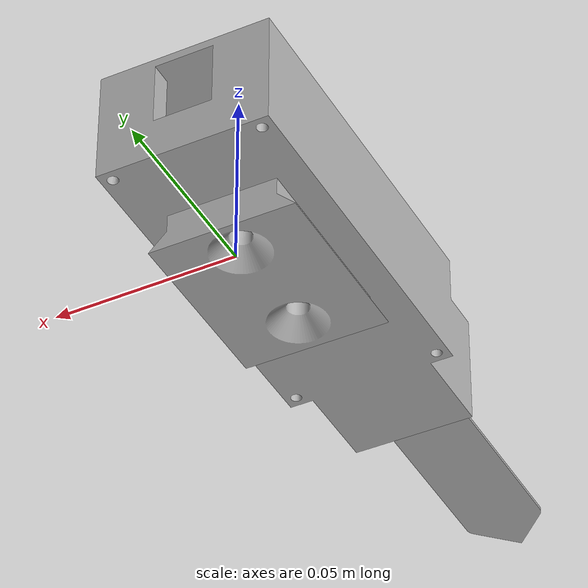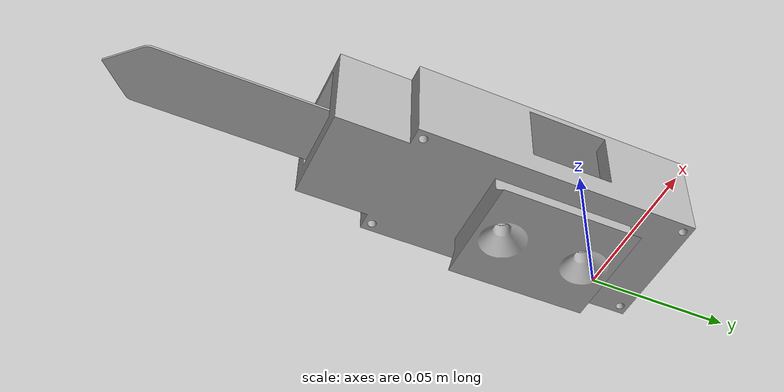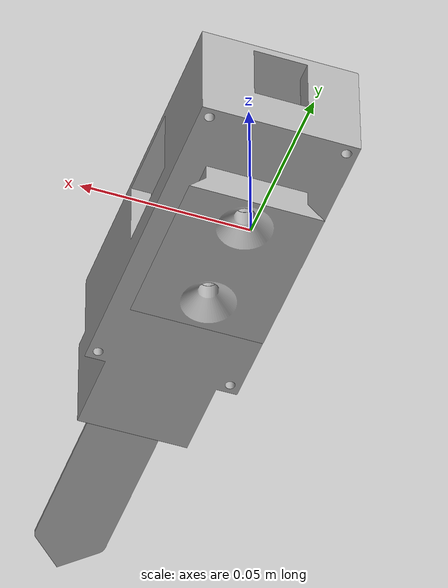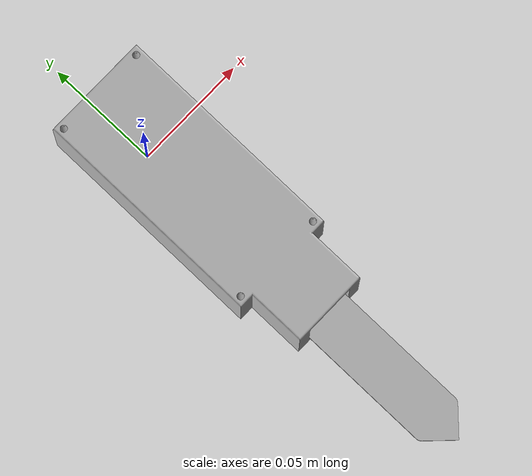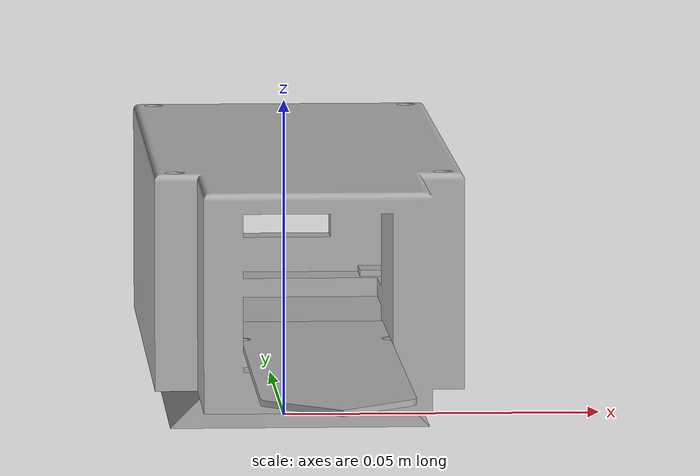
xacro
<?xml version="1.0" ?>
<robot name="endeffector" xmlns:xacro="http://www.ros.org/wiki/xacro">

  <xacro:arg name="prefix" default="" />

  <xacro:include filename="$(find endeffector_description)/urdf/materials.xacro" />
  <xacro:include filename="$(find endeffector_description)/urdf/endeffector.trans" />
  <xacro:include filename="$(find endeffector_description)/urdf/endeffector.gazebo" />

  <link name="$(arg prefix)base_link">
    <inertial>
      <origin xyz="-0.0004828492599513455 -0.03453707057398219 0.029353241599917475" rpy="0 0 0"/>
      <mass value="0.6290446959955387"/>
      <inertia ixx="0.001001" iyy="0.000242" izz="0.001076" ixy="9e-06" iyz="-2e-06" ixz="2e-06"/>
    </inertial>
    <visual>
      <origin xyz="0 0 0" rpy="0 0 0"/>
      <geometry>
        <mesh filename="package://endeffector_description/meshes/base_link.stl" scale="0.001 0.001 0.001"/>
      </geometry>
      <material name="silver"/>
    </visual>
    <!-- inserted by tool: default collision -->
    <collision>
      <geometry>
        <box size="0.06 0.04 0.03"/>
      </geometry>
      <origin xyz="0 0 0.015" rpy="0 0 0"/>
    </collision>
</link>

  <link name="$(arg prefix)Component3_1">
    <inertial>
      <origin xyz="2.9393522312957596e-08 -0.014999818138314712 -0.006117760776172872" rpy="0 0 0"/>
      <mass value="0.13979056869000012"/>
      <inertia ixx="3.1e-05" iyy="1.5e-05" izz="4.2e-05" ixy="0.0" iyz="-0.0" ixz="0.0"/>
    </inertial>
    <visual>
      <origin xyz="-0.000468 0.003253 -0.016" rpy="0 0 0"/>
      <geometry>
        <mesh filename="package://endeffector_description/meshes/Component3_1.stl" scale="0.001 0.001 0.001"/>
      </geometry>
      <material name="silver"/>
    </visual>
    <!-- inserted by tool: default collision -->
    <collision>
      <geometry>
        <box size="0.06 0.04 0.03"/>
      </geometry>
      <origin xyz="0 0 0.015" rpy="0 0 0"/>
    </collision>
</link>

  <link name="$(arg prefix)Capacative_Soil_Moisture_Sensor_v1.2_v2_1">
    <inertial>
      <origin xyz="0.011112529965739852 -0.023627396305211643 -0.0004500001430511394" rpy="0 0 0"/>
      <mass value="0.01437350509781825"/>
      <inertia ixx="1e-05" iyy="1e-06" izz="1.1e-05" ixy="0.0" iyz="0.0" ixz="0.0"/>
    </inertial>
    <visual>
      <origin xyz="0.010632 0.094013 -0.02415" rpy="0 0 0"/>
      <geometry>
        <mesh filename="package://endeffector_description/meshes/Capacative_Soil_Moisture_Sensor_v1.2_v2_1.stl" scale="0.001 0.001 0.001"/>
      </geometry>
      <material name="silver"/>
    </visual>
    <!-- inserted by tool: default collision -->
    <collision>
      <geometry>
        <box size="0.06 0.04 0.03"/>
      </geometry>
      <origin xyz="0 0 0.015" rpy="0 0 0"/>
    </collision>
</link>

  <joint name="$(arg prefix)Rigid 2" type="fixed">
    <origin xyz="0.000468 -0.003253 0.016" rpy="0 0 0"/>
    <parent link="$(arg prefix)base_link"/>
    <child link="$(arg prefix)Component3_1"/>
  </joint>

  <joint name="$(arg prefix)Rigid 3" type="fixed">
    <origin xyz="-0.010632 -0.094013 0.02415" rpy="0 0 0"/>
    <parent link="$(arg prefix)base_link"/>
    <child link="$(arg prefix)Capacative_Soil_Moisture_Sensor_v1.2_v2_1"/>
  </joint>

</robot>

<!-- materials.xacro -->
<robot name="endeffector" xmlns:xacro="http://www.ros.org/wiki/xacro" >

<material name="silver">
  <color rgba="0.700 0.700 0.700 1.000"/>
</material>

</robot>

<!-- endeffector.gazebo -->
<robot name="endeffector" xmlns:xacro="http://www.ros.org/wiki/xacro" >

<xacro:property name="body_color" value="Gazebo/Silver" />

<gazebo>
  <plugin name="control" filename="libgazebo_ros_control.so"/>
</gazebo>
<gazebo reference="base_link">
  <material>${body_color}</material>
  <mu1>0.2</mu1>
  <mu2>0.2</mu2>
  <self_collide>true</self_collide>
  <gravity>true</gravity>
</gazebo>

<gazebo reference="Component3_1">
  <material>${body_color}</material>
  <mu1>0.2</mu1>
  <mu2>0.2</mu2>
  <self_collide>true</self_collide>
</gazebo>

<gazebo reference="Capacative_Soil_Moisture_Sensor_v1.2_v2_1">
  <material>${body_color}</material>
  <mu1>0.2</mu1>
  <mu2>0.2</mu2>
  <self_collide>true</self_collide>
</gazebo>

</robot>
